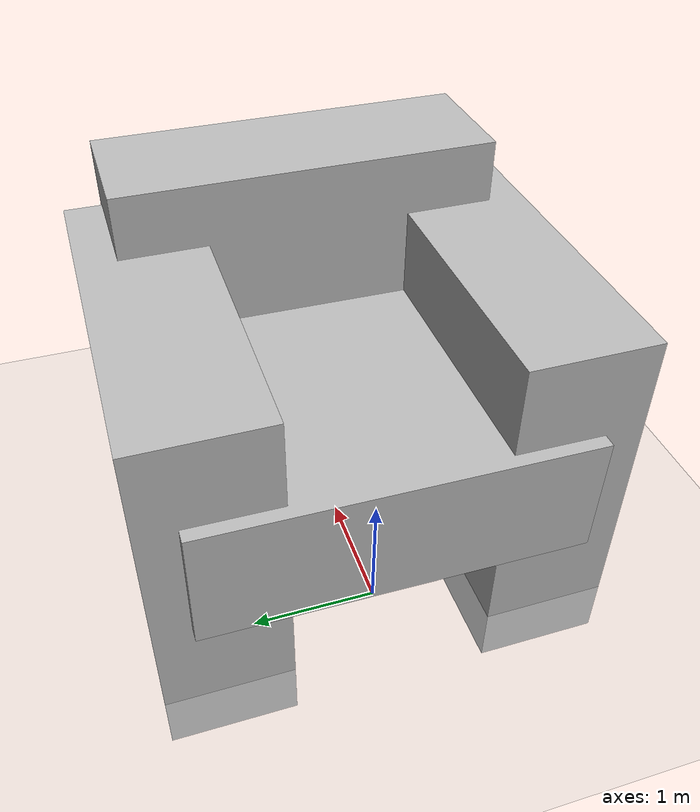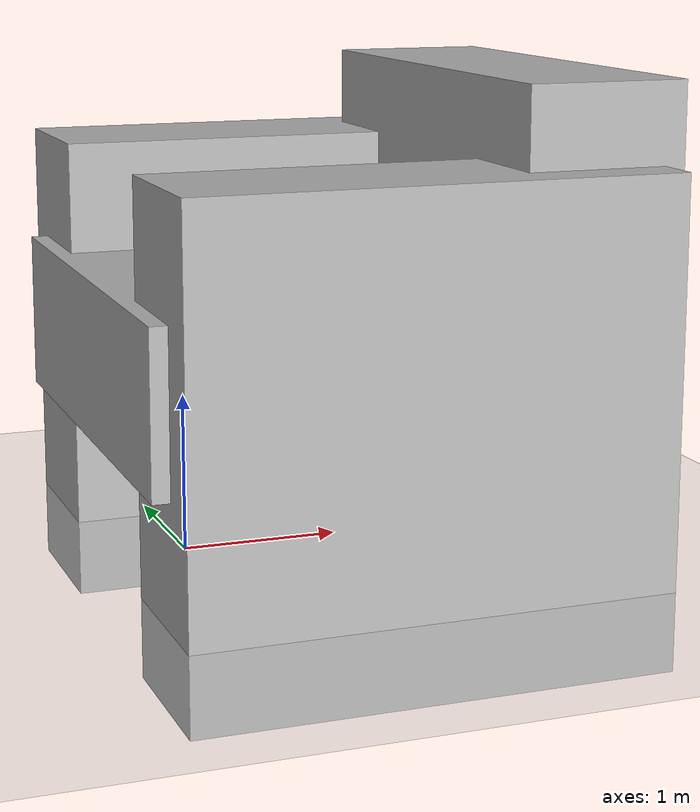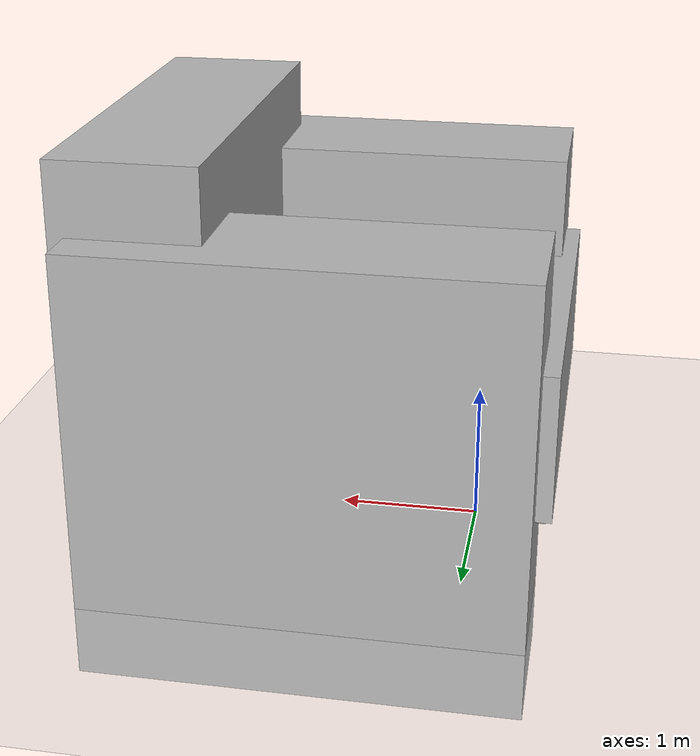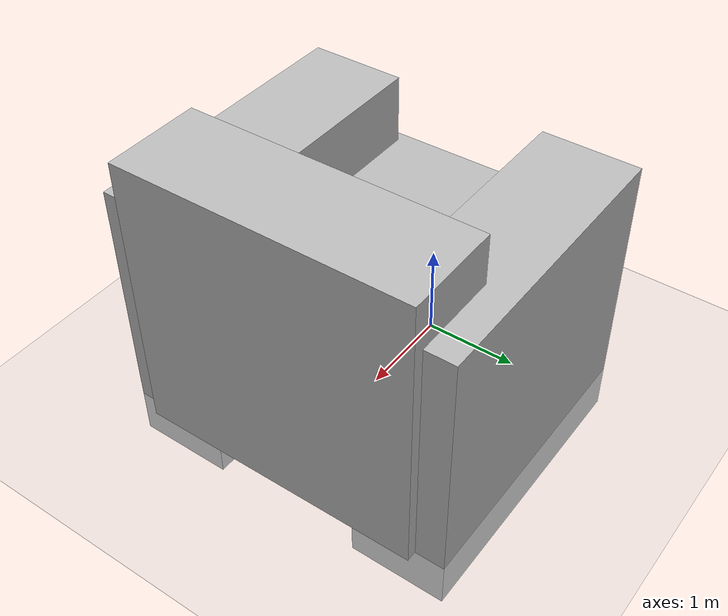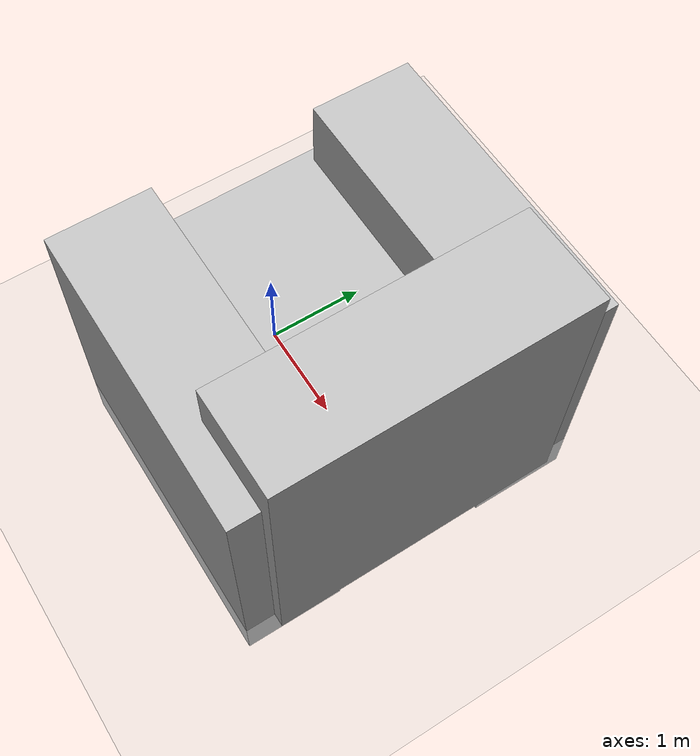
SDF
<sdf version="1.4">
 <world name="calibration_test">
  <light name="sun" type="directional">
   <pose>0 0 10 0 -0 0</pose>
   <diffuse>0.8 0.8 0.8 1</diffuse>
   <specular>0.2 0.2 0.2 1</specular>
   <attenuation>
    <range>1000</range>
    <constant>0.9</constant>
    <linear>0.01</linear>
    <quadratic>0.001</quadratic>
   </attenuation>
   <direction>-0.5 0.1 -0.9</direction>
  </light>
  <model name="ground_plane">
   <static>1</static>
   <link name="link">
    <collision name="collision">
     <geometry><plane><normal>0 0 1</normal><size>100 100</size></plane></geometry>
     <surface><friction><ode><mu>100</mu><mu2>50</mu2></ode></friction></surface>
    </collision>
    <visual name="visual">
     <cast_shadows>0</cast_shadows>
     <geometry><plane><normal>0 0 1</normal><size>100 100</size></plane></geometry>
     <material>
      <script><uri>file://media/materials/scripts/gazebo.material</uri><name>Gazebo/Grey</name></script>
     </material>
    </visual>
   </link>
  </model>
  <physics name="default_physics" default="0" type="ode">
   <max_step_size>0.001</max_step_size>
   <real_time_factor>1</real_time_factor>
   <real_time_update_rate>1000</real_time_update_rate>
   <gravity>0 0 -9.8</gravity>
   <magnetic_field>6e-06 2.3e-05 -4.2e-05</magnetic_field>
  </physics>
  <scene><ambient>0.4 0.4 0.4 1</ambient><background>0.7 0.7 0.7 1</background><shadows>1</shadows></scene>
  <spherical_coordinates>
   <surface_model>EARTH_WGS84</surface_model>
   <latitude_deg>0</latitude_deg>
   <longitude_deg>0</longitude_deg>
   <elevation>0</elevation>
   <heading_deg>0</heading_deg>
  </spherical_coordinates>
  <model name="brick_box_3x1x3">
   <static>1</static>
   <link name="chassis">
    <pose>0 0 1.5 0 -0 0</pose>
    <collision name="collision"><geometry><box><size>3 1 3</size></box></geometry></collision>
    <visual name="visual">
     <geometry><mesh><uri>model://brick_box_3x1x3/meshes/simple_box.dae</uri><scale>3 1 3</scale></mesh></geometry>
     <material>
      <script>
       <uri>model://brick_box_3x1x3/materials/scripts</uri>
       <uri>model://brick_box_3x1x3/materials/textures</uri>
       <name>BrickBox/Diffuse</name>
      </script>
     </material>
    </visual>
   </link>
   <pose>2.11947 -0.006107 0 0 0 -1.56518</pose>
  </model>
  <model name="brick_box_3x1x3_0">
   <static>1</static>
   <link name="chassis">
    <pose>0 0 1 0 -0 0</pose>
    <collision name="collision"><geometry><box><size>3 1 3</size></box></geometry></collision>
    <visual name="visual">
     <geometry><mesh><uri>model://brick_box_3x1x3/meshes/simple_box.dae</uri><scale>3 1 3</scale></mesh></geometry>
     <material>
      <script>
       <uri>model://brick_box_3x1x3/materials/scripts</uri>
       <uri>model://brick_box_3x1x3/materials/textures</uri>
       <name>BrickBox/Diffuse</name>
      </script>
     </material>
    </visual>
   </link>
   <pose>1 1.3 0 0 -0 0</pose>
  </model>
  <model name="brick_box_3x1x3_1">
   <static>1</static>
   <link name="chassis">
    <pose>0 0 1 0 -0 0</pose>
    <collision name="collision"><geometry><box><size>3 1 3</size></box></geometry></collision>
    <visual name="visual">
     <geometry><mesh><uri>model://brick_box_3x1x3/meshes/simple_box.dae</uri><scale>3 1 3</scale></mesh></geometry>
     <material>
      <script>
       <uri>model://brick_box_3x1x3/materials/scripts</uri>
       <uri>model://brick_box_3x1x3/materials/textures</uri>
       <name>BrickBox/Diffuse</name>
      </script>
     </material>
    </visual>
   </link>
   <pose>1 -1.3 0 0 -0 0</pose>
  </model>
  <model name="brick_box_3x1x3_2">
   <static>1</static>
   <link name="chassis">
    <pose>0 0 1.5 0 0 0</pose>
    <collision name="collision"><geometry><box><size>3 1 3</size></box></geometry></collision>
    <visual name="visual">
     <geometry><mesh><uri>model://brick_box_3x1x3/meshes/simple_box.dae</uri><scale>3 1 3</scale></mesh></geometry>
     <material>
      <script>
       <uri>model://brick_box_3x1x3/materials/scripts</uri>
       <uri>model://brick_box_3x1x3/materials/textures</uri>
       <name>BrickBox/Diffuse</name>
      </script>
     </material>
    </visual>
   </link>
   <pose>0.891273 1.50803 1.30449 1.58283 -0 0</pose>
  </model>
 </world>
</sdf>
